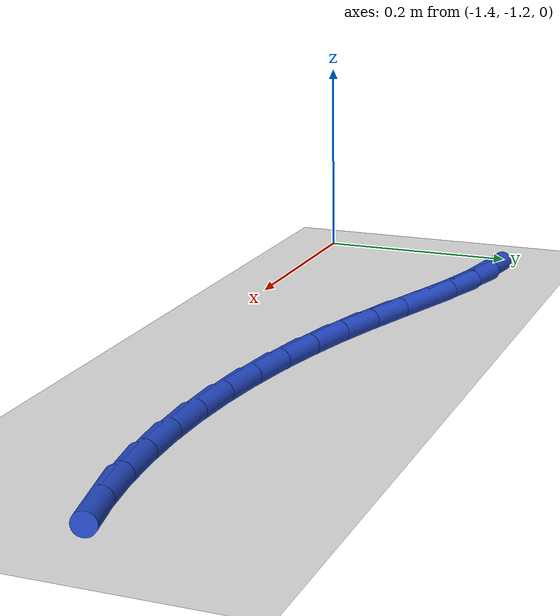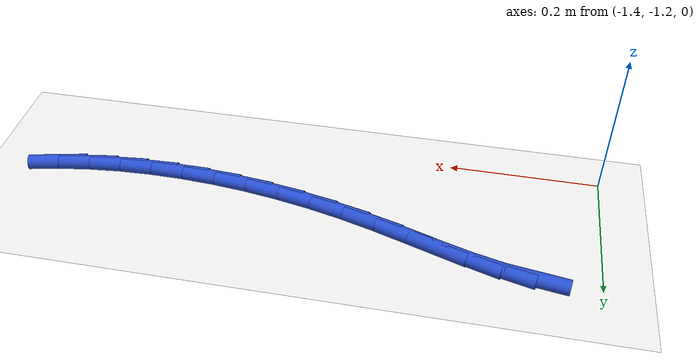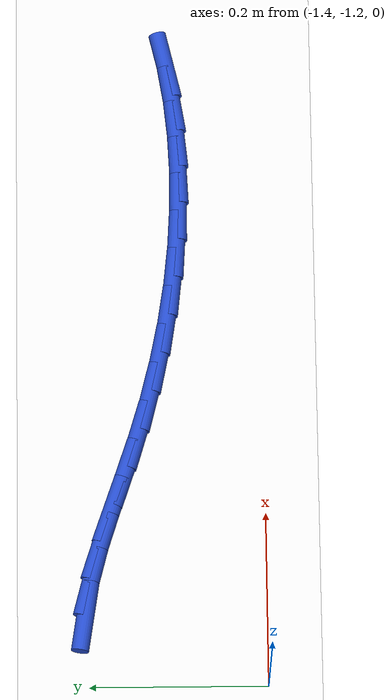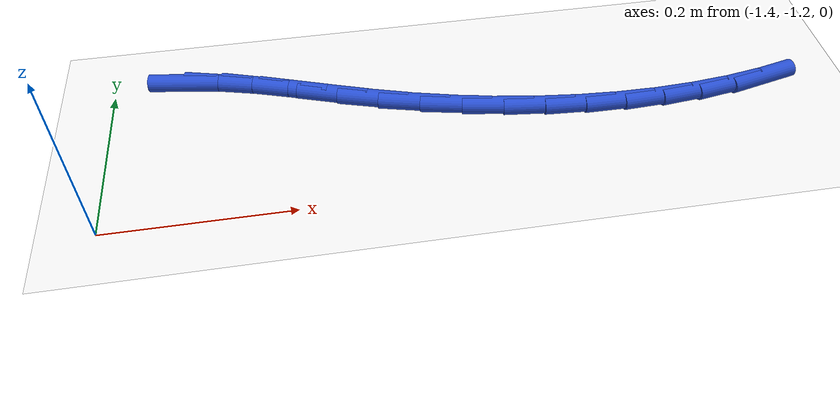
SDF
<sdf version="1.6">
 <world name="default">
  <model name="ground_plane">
   <static>1</static>
   <link name="link">
    <collision name="collision">
     <geometry><plane><normal>0 0 1</normal><size>100 100</size></plane></geometry>
     <surface><friction><ode><mu>100</mu><mu2>50</mu2></ode></friction></surface>
    </collision>
    <visual name="visual">
     <cast_shadows>0</cast_shadows>
     <geometry><plane><normal>0 0 1</normal><size>100 100</size></plane></geometry>
     <material>
      <script><uri>file://media/materials/scripts/gazebo.material</uri><name>Gazebo/WhiteGlow</name></script>
     </material>
    </visual>
   </link>
  </model>
  <model name="line">
   <link name="link_152">
    <pose>-1.320528780908241 -0.9961947514954123 0.01 0 1.57 -0.15520324240468092</pose>
    <collision name="collision">
     <geometry><cylinder><radius>0.01</radius><length>0.08</length></cylinder></geometry>
    </collision>
    <visual name="visual">
     <material>
      <script><name>Gazebo/Blue</name><uri>file://media/materials/scripts/gazebo.material</uri></script>
     </material>
     <geometry><cylinder><radius>0.01</radius><length>0.08</length></cylinder></geometry>
    </visual>
   </link>
   <link name="link_153">
    <pose>-1.2813447696205587 -1.0023255425906656 0.01 0 1.57 -0.25445798673222864</pose>
    <collision name="collision">
     <geometry><cylinder><radius>0.01</radius><length>0.08</length></cylinder></geometry>
    </collision>
    <visual name="visual">
     <material>
      <script><name>Gazebo/Blue</name><uri>file://media/materials/scripts/gazebo.material</uri></script>
     </material>
     <geometry><cylinder><radius>0.01</radius><length>0.08</length></cylinder></geometry>
    </visual>
   </link>
   <link name="link_154">
    <pose>-1.2404834540031777 -1.0129534077284839 0.01 0 1.57 -0.3112864296378751</pose>
    <collision name="collision">
     <geometry><cylinder><radius>0.01</radius><length>0.08</length></cylinder></geometry>
    </collision>
    <visual name="visual">
     <material>
      <script><name>Gazebo/Blue</name><uri>file://media/materials/scripts/gazebo.material</uri></script>
     </material>
     <geometry><cylinder><radius>0.01</radius><length>0.08</length></cylinder></geometry>
    </visual>
   </link>
   <link name="link_155">
    <pose>-1.1982113682305844 -1.0265543042366034 0.01 0 1.57 -0.333679428177479</pose>
    <collision name="collision">
     <geometry><cylinder><radius>0.01</radius><length>0.08</length></cylinder></geometry>
    </collision>
    <visual name="visual">
     <material>
      <script><name>Gazebo/Blue</name><uri>file://media/materials/scripts/gazebo.material</uri></script>
     </material>
     <geometry><cylinder><radius>0.01</radius><length>0.08</length></cylinder></geometry>
    </visual>
   </link>
   <link name="link_156">
    <pose>-1.1547950464772658 -1.0416041894427615 0.01 0 1.57 -0.32601458473295813</pose>
    <collision name="collision">
     <geometry><cylinder><radius>0.01</radius><length>0.08</length></cylinder></geometry>
    </collision>
    <visual name="visual">
     <material>
      <script><name>Gazebo/Blue</name><uri>file://media/materials/scripts/gazebo.material</uri></script>
     </material>
     <geometry><cylinder><radius>0.01</radius><length>0.08</length></cylinder></geometry>
    </visual>
   </link>
   <link name="link_157">
    <pose>-1.1105010229177095 -1.0565790206746952 0.01 0 1.57 -0.291385702531318</pose>
    <collision name="collision">
     <geometry><cylinder><radius>0.01</radius><length>0.08</length></cylinder></geometry>
    </collision>
    <visual name="visual">
     <material>
      <script><name>Gazebo/Blue</name><uri>file://media/materials/scripts/gazebo.material</uri></script>
     </material>
     <geometry><cylinder><radius>0.01</radius><length>0.08</length></cylinder></geometry>
    </visual>
   </link>
   <link name="link_158">
    <pose>-1.065590513532451 -1.0700486934391573 0.01 0 1.57 -0.2468909189590184</pose>
    <collision name="collision">
     <geometry><cylinder><radius>0.01</radius><length>0.08</length></cylinder></geometry>
    </collision>
    <visual name="visual">
     <material>
      <script><name>Gazebo/Blue</name><uri>file://media/materials/scripts/gazebo.material</uri></script>
     </material>
     <geometry><cylinder><radius>0.01</radius><length>0.08</length></cylinder></geometry>
    </visual>
   </link>
   <link name="link_159">
    <pose>-1.020274534834591 -1.0814698039917738 0.01 0 1.57 -0.20180752069077795</pose>
    <collision name="collision">
     <geometry><cylinder><radius>0.01</radius><length>0.08</length></cylinder></geometry>
    </collision>
    <visual name="visual">
     <material>
      <script><name>Gazebo/Blue</name><uri>file://media/materials/scripts/gazebo.material</uri></script>
     </material>
     <geometry><cylinder><radius>0.01</radius><length>0.08</length></cylinder></geometry>
    </visual>
   </link>
   <link name="link_160">
    <pose>-0.9747364986324495 -1.0907865456415253 0.01 0 1.57 -0.1558580400471747</pose>
    <collision name="collision">
     <geometry><cylinder><radius>0.01</radius><length>0.08</length></cylinder></geometry>
    </collision>
    <visual name="visual">
     <material>
      <script><name>Gazebo/Blue</name><uri>file://media/materials/scripts/gazebo.material</uri></script>
     </material>
     <geometry><cylinder><radius>0.01</radius><length>0.08</length></cylinder></geometry>
    </visual>
   </link>
   <link name="link_161">
    <pose>-0.9291595305878042 -1.097948166060834 0.01 0 1.57 -0.10864912664409955</pose>
    <collision name="collision">
     <geometry><cylinder><radius>0.01</radius><length>0.08</length></cylinder></geometry>
    </collision>
    <visual name="visual">
     <material>
      <script><name>Gazebo/Blue</name><uri>file://media/materials/scripts/gazebo.material</uri></script>
     </material>
     <geometry><cylinder><radius>0.01</radius><length>0.08</length></cylinder></geometry>
    </visual>
   </link>
   <link name="link_162">
    <pose>-0.8837267563624327 -1.1029039129221219 0.01 0 1.57 -0.05976896089778551</pose>
    <collision name="collision">
     <geometry><cylinder><radius>0.01</radius><length>0.08</length></cylinder></geometry>
    </collision>
    <visual name="visual">
     <material>
      <script><name>Gazebo/Blue</name><uri>file://media/materials/scripts/gazebo.material</uri></script>
     </material>
     <geometry><cylinder><radius>0.01</radius><length>0.08</length></cylinder></geometry>
    </visual>
   </link>
   <link name="link_163">
    <pose>-0.8386213016181125 -1.105603033897812 0.01 0 1.57 -0.008784226979528463</pose>
    <collision name="collision">
     <geometry><cylinder><radius>0.01</radius><length>0.08</length></cylinder></geometry>
    </collision>
    <visual name="visual">
     <material>
      <script><name>Gazebo/Blue</name><uri>file://media/materials/scripts/gazebo.material</uri></script>
     </material>
     <geometry><cylinder><radius>0.01</radius><length>0.08</length></cylinder></geometry>
    </visual>
   </link>
   <link name="link_164">
    <pose>-0.7940262920166221 -1.1059947766603266 0.01 0 1.57 0.044761046647166985</pose>
    <collision name="collision">
     <geometry><cylinder><radius>0.01</radius><length>0.08</length></cylinder></geometry>
    </collision>
    <visual name="visual">
     <material>
      <script><name>Gazebo/Blue</name><uri>file://media/materials/scripts/gazebo.material</uri></script>
     </material>
     <geometry><cylinder><radius>0.01</radius><length>0.08</length></cylinder></geometry>
    </visual>
   </link>
   <link name="link_165">
    <pose>-0.7501248532197381 -1.104028388882089 0.01 0 1.57 0.10134358448290831</pose>
    <collision name="collision">
     <geometry><cylinder><radius>0.01</radius><length>0.08</length></cylinder></geometry>
    </collision>
    <visual name="visual">
     <material>
      <script><name>Gazebo/Blue</name><uri>file://media/materials/scripts/gazebo.material</uri></script>
     </material>
     <geometry><cylinder><radius>0.01</radius><length>0.08</length></cylinder></geometry>
    </visual>
   </link>
   <link name="link_166">
    <pose>-0.7071001108892389 -1.099653118235521 0.01 0 1.57 0.1614542050433564</pose>
    <collision name="collision">
     <geometry><cylinder><radius>0.01</radius><length>0.08</length></cylinder></geometry>
    </collision>
    <visual name="visual">
     <material>
      <script><name>Gazebo/Blue</name><uri>file://media/materials/scripts/gazebo.material</uri></script>
     </material>
     <geometry><cylinder><radius>0.01</radius><length>0.08</length></cylinder></geometry>
    </visual>
   </link>
   <link name="link_167">
    <pose>-0.6651351906869031 -1.0928182123930448 0.01 0 1.57 0.2255841422691141</pose>
    <collision name="collision">
     <geometry><cylinder><radius>0.01</radius><length>0.08</length></cylinder></geometry>
    </collision>
    <visual name="visual">
     <material>
      <script><name>Gazebo/Blue</name><uri>file://media/materials/scripts/gazebo.material</uri></script>
     </material>
     <geometry><cylinder><radius>0.01</radius><length>0.08</length></cylinder></geometry>
    </visual>
   </link>
  </model>
 </world>
</sdf>
